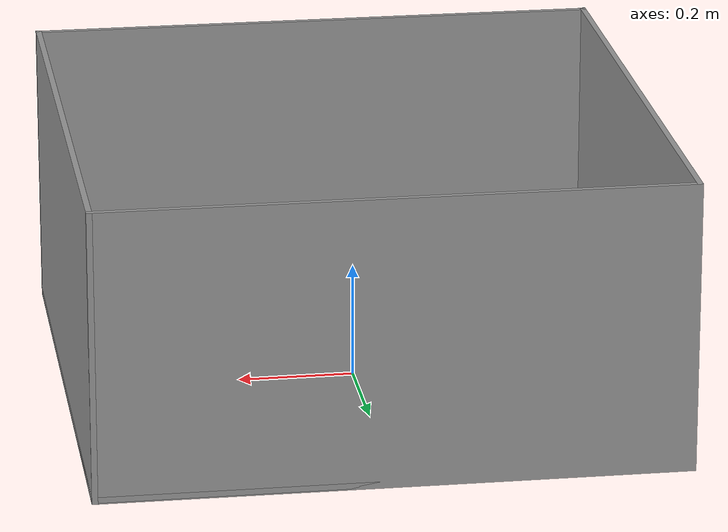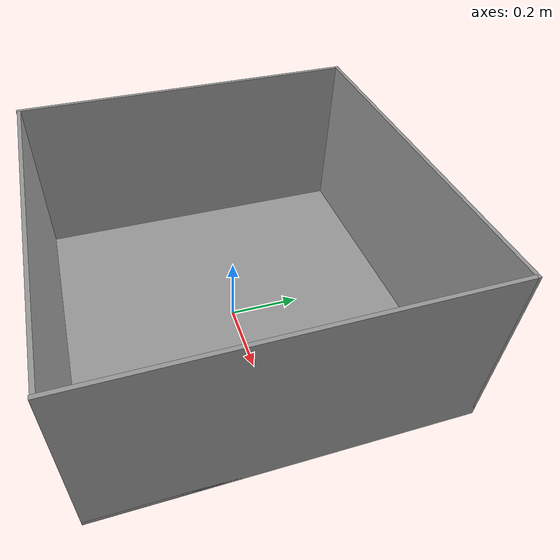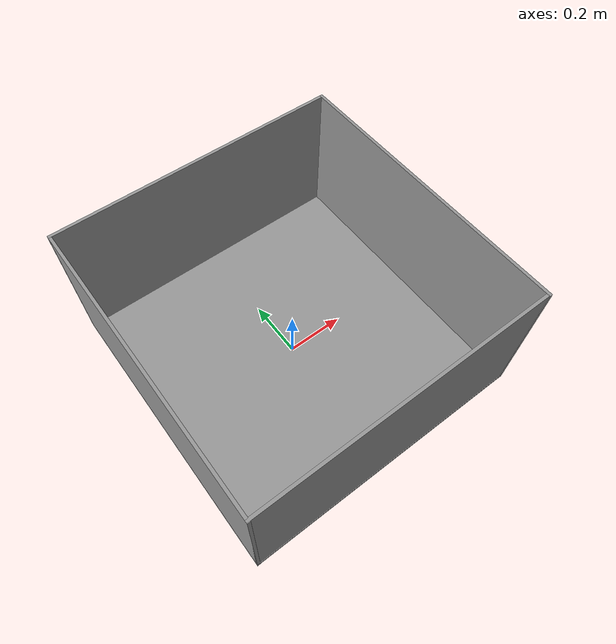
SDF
<?xml version='1.0'?>
<sdf version='1.6'>
  <model name='freezer_box'>
    <link name='link'>
      <pose frame=''>0 0 0 0 -0 0</pose>
      <inertial>
        <mass>1</mass>
        <inertia>
          <ixx>0.166667</ixx>
          <ixy>0</ixy>
          <ixz>0</ixz>
          <iyy>0.166667</iyy>
          <iyz>0</iyz>
          <izz>0.166667</izz>
        </inertia>
        <pose frame=''>0 0 0 0 -0 0</pose>
      </inertial>
      <self_collide>0</self_collide>
      <kinematic>0</kinematic>
      <gravity>1</gravity>
      <visual name='visual'>
        <geometry>
          <box>
            <size>1 1 0.01</size>
          </box>
        </geometry>
        <material>
          <script>
            <name>Gazebo/Grey</name>
            <uri>file://media/materials/scripts/gazebo.material</uri>
          </script>
          <ambient>0.3 0.3 0.3 1</ambient>
          <diffuse>0.7 0.7 0.7 1</diffuse>
          <specular>0.01 0.01 0.01 1</specular>
          <emissive>0 0 0 1</emissive>
          <shader type='vertex'>
            <normal_map>__default__</normal_map>
          </shader>
        </material>
        <pose frame=''>0 0 0 0 -0 0</pose>
        <transparency>0</transparency>
        <cast_shadows>1</cast_shadows>
      </visual>
      <collision name='collision'>
        <laser_retro>0</laser_retro>
        <max_contacts>10</max_contacts>
        <pose frame=''>0 0 0 0 -0 0</pose>
        <geometry>
          <box>
            <size>1 1 0.01</size>
          </box>
        </geometry>
        <surface>
          <friction>
            <ode>
              <mu>1</mu>
              <mu2>1</mu2>
              <fdir1>0 0 0</fdir1>
              <slip1>0</slip1>
              <slip2>0</slip2>
            </ode>
            <torsional>
              <coefficient>1</coefficient>
              <patch_radius>0</patch_radius>
              <surface_radius>0</surface_radius>
              <use_patch_radius>1</use_patch_radius>
              <ode>
                <slip>0</slip>
              </ode>
            </torsional>
          </friction>
          <bounce>
            <restitution_coefficient>0</restitution_coefficient>
            <threshold>1e+06</threshold>
          </bounce>
          <contact>
            <collide_without_contact>0</collide_without_contact>
            <collide_without_contact_bitmask>1</collide_without_contact_bitmask>
            <collide_bitmask>1</collide_bitmask>
            <ode>
              <soft_cfm>0</soft_cfm>
              <soft_erp>0.2</soft_erp>
              <kp>1e+13</kp>
              <kd>1</kd>
              <max_vel>0.01</max_vel>
              <min_depth>0</min_depth>
            </ode>
            <bullet>
              <split_impulse>1</split_impulse>
              <split_impulse_penetration_threshold>-0.01</split_impulse_penetration_threshold>
              <soft_cfm>0</soft_cfm>
              <soft_erp>0.2</soft_erp>
              <kp>1e+13</kp>
              <kd>1</kd>
            </bullet>
          </contact>
        </surface>
      </collision>
    </link>
    <link name='link_0'>
      <pose frame=''>0 -0.493 0.243 0 -0 1.5708</pose>
      <inertial>
        <mass>1</mass>
        <inertia>
          <ixx>0.166667</ixx>
          <ixy>0</ixy>
          <ixz>0</ixz>
          <iyy>0.166667</iyy>
          <iyz>0</iyz>
          <izz>0.166667</izz>
        </inertia>
        <pose frame=''>0 0 0 0 -0 0</pose>
      </inertial>
      <gravity>1</gravity>
      <self_collide>0</self_collide>
      <kinematic>0</kinematic>
      <visual name='visual'>
        <pose frame=''>0 0 0 0 -0 0</pose>
        <geometry>
          <box>
            <size>0.01 1 0.5</size>
          </box>
        </geometry>
        <material>
          <lighting>1</lighting>
          <script>
            <uri>file://media/materials/scripts/gazebo.material</uri>
            <name>Gazebo/Grey</name>
          </script>
          <ambient>0.3 0.3 0.3 1</ambient>
          <diffuse>0.7 0.7 0.7 1</diffuse>
          <specular>0.01 0.01 0.01 1</specular>
          <emissive>0 0 0 1</emissive>
          <shader type='vertex'>
            <normal_map>__default__</normal_map>
          </shader>
        </material>
        <transparency>0</transparency>
        <cast_shadows>1</cast_shadows>
      </visual>
      <collision name='collision'>
        <laser_retro>0</laser_retro>
        <max_contacts>10</max_contacts>
        <pose frame=''>0 0 0 0 -0 0</pose>
        <geometry>
          <box>
            <size>0.01 1 0.5</size>
          </box>
        </geometry>
        <surface>
          <friction>
            <ode>
              <mu>1</mu>
              <mu2>1</mu2>
              <fdir1>0 0 0</fdir1>
              <slip1>0</slip1>
              <slip2>0</slip2>
            </ode>
            <torsional>
              <coefficient>1</coefficient>
              <patch_radius>0</patch_radius>
              <surface_radius>0</surface_radius>
              <use_patch_radius>1</use_patch_radius>
              <ode>
                <slip>0</slip>
              </ode>
            </torsional>
          </friction>
          <bounce>
            <restitution_coefficient>0</restitution_coefficient>
            <threshold>1e+06</threshold>
          </bounce>
          <contact>
            <collide_without_contact>0</collide_without_contact>
            <collide_without_contact_bitmask>1</collide_without_contact_bitmask>
            <collide_bitmask>1</collide_bitmask>
            <ode>
              <soft_cfm>0</soft_cfm>
              <soft_erp>0.2</soft_erp>
              <kp>1e+13</kp>
              <kd>1</kd>
              <max_vel>0.01</max_vel>
              <min_depth>0</min_depth>
            </ode>
            <bullet>
              <split_impulse>1</split_impulse>
              <split_impulse_penetration_threshold>-0.01</split_impulse_penetration_threshold>
              <soft_cfm>0</soft_cfm>
              <soft_erp>0.2</soft_erp>
              <kp>1e+13</kp>
              <kd>1</kd>
            </bullet>
          </contact>
        </surface>
      </collision>
    </link>
    <link name='link_0_clone'>
      <pose frame=''>0.495 0 0.243 0 -0 0</pose>
      <inertial>
        <mass>1</mass>
        <inertia>
          <ixx>0.166667</ixx>
          <ixy>0</ixy>
          <ixz>0</ixz>
          <iyy>0.166667</iyy>
          <iyz>0</iyz>
          <izz>0.166667</izz>
        </inertia>
        <pose frame=''>0 0 0 0 -0 0</pose>
      </inertial>
      <self_collide>0</self_collide>
      <kinematic>0</kinematic>
      <visual name='visual'>
        <pose frame=''>0 0 0 0 -0 0</pose>
        <geometry>
          <box>
            <size>0.01 1 0.5</size>
          </box>
        </geometry>
        <material>
          <lighting>1</lighting>
          <script>
            <uri>file://media/materials/scripts/gazebo.material</uri>
            <name>Gazebo/Grey</name>
          </script>
          <ambient>0.3 0.3 0.3 1</ambient>
          <diffuse>0.7 0.7 0.7 1</diffuse>
          <specular>0.01 0.01 0.01 1</specular>
          <emissive>0 0 0 1</emissive>
          <shader type='vertex'>
            <normal_map>__default__</normal_map>
          </shader>
        </material>
        <transparency>0</transparency>
        <cast_shadows>1</cast_shadows>
      </visual>
      <collision name='collision'>
        <laser_retro>0</laser_retro>
        <max_contacts>10</max_contacts>
        <pose frame=''>0 0 0 0 -0 0</pose>
        <geometry>
          <box>
            <size>0.01 1 0.5</size>
          </box>
        </geometry>
        <surface>
          <friction>
            <ode>
              <mu>1</mu>
              <mu2>1</mu2>
              <fdir1>0 0 0</fdir1>
              <slip1>0</slip1>
              <slip2>0</slip2>
            </ode>
            <torsional>
              <coefficient>1</coefficient>
              <patch_radius>0</patch_radius>
              <surface_radius>0</surface_radius>
              <use_patch_radius>1</use_patch_radius>
              <ode>
                <slip>0</slip>
              </ode>
            </torsional>
          </friction>
          <bounce>
            <restitution_coefficient>0</restitution_coefficient>
            <threshold>1e+06</threshold>
          </bounce>
          <contact>
            <collide_without_contact>0</collide_without_contact>
            <collide_without_contact_bitmask>1</collide_without_contact_bitmask>
            <collide_bitmask>1</collide_bitmask>
            <ode>
              <soft_cfm>0</soft_cfm>
              <soft_erp>0.2</soft_erp>
              <kp>1e+13</kp>
              <kd>1</kd>
              <max_vel>0.01</max_vel>
              <min_depth>0</min_depth>
            </ode>
            <bullet>
              <split_impulse>1</split_impulse>
              <split_impulse_penetration_threshold>-0.01</split_impulse_penetration_threshold>
              <soft_cfm>0</soft_cfm>
              <soft_erp>0.2</soft_erp>
              <kp>1e+13</kp>
              <kd>1</kd>
            </bullet>
          </contact>
        </surface>
      </collision>
    </link>
    <link name='link_0_clone_0'>
      <pose frame=''>-0.495 0 0.243 0 -0 0</pose>
      <inertial>
        <mass>1</mass>
        <inertia>
          <ixx>0.166667</ixx>
          <ixy>0</ixy>
          <ixz>0</ixz>
          <iyy>0.166667</iyy>
          <iyz>0</iyz>
          <izz>0.166667</izz>
        </inertia>
        <pose frame=''>0 0 0 0 -0 0</pose>
      </inertial>
      <self_collide>0</self_collide>
      <kinematic>0</kinematic>
      <visual name='visual'>
        <pose frame=''>0 0 0 0 -0 0</pose>
        <geometry>
          <box>
            <size>0.01 1 0.5</size>
          </box>
        </geometry>
        <material>
          <lighting>1</lighting>
          <script>
            <uri>file://media/materials/scripts/gazebo.material</uri>
            <name>Gazebo/Grey</name>
          </script>
          <ambient>0.3 0.3 0.3 1</ambient>
          <diffuse>0.7 0.7 0.7 1</diffuse>
          <specular>0.01 0.01 0.01 1</specular>
          <emissive>0 0 0 1</emissive>
          <shader type='vertex'>
            <normal_map>__default__</normal_map>
          </shader>
        </material>
        <transparency>0</transparency>
        <cast_shadows>1</cast_shadows>
      </visual>
      <collision name='collision'>
        <laser_retro>0</laser_retro>
        <max_contacts>10</max_contacts>
        <pose frame=''>0 0 0 0 -0 0</pose>
        <geometry>
          <box>
            <size>0.01 1 0.5</size>
          </box>
        </geometry>
        <surface>
          <friction>
            <ode>
              <mu>1</mu>
              <mu2>1</mu2>
              <fdir1>0 0 0</fdir1>
              <slip1>0</slip1>
              <slip2>0</slip2>
            </ode>
            <torsional>
              <coefficient>1</coefficient>
              <patch_radius>0</patch_radius>
              <surface_radius>0</surface_radius>
              <use_patch_radius>1</use_patch_radius>
              <ode>
                <slip>0</slip>
              </ode>
            </torsional>
          </friction>
          <bounce>
            <restitution_coefficient>0</restitution_coefficient>
            <threshold>1e+06</threshold>
          </bounce>
          <contact>
            <collide_without_contact>0</collide_without_contact>
            <collide_without_contact_bitmask>1</collide_without_contact_bitmask>
            <collide_bitmask>1</collide_bitmask>
            <ode>
              <soft_cfm>0</soft_cfm>
              <soft_erp>0.2</soft_erp>
              <kp>1e+13</kp>
              <kd>1</kd>
              <max_vel>0.01</max_vel>
              <min_depth>0</min_depth>
            </ode>
            <bullet>
              <split_impulse>1</split_impulse>
              <split_impulse_penetration_threshold>-0.01</split_impulse_penetration_threshold>
              <soft_cfm>0</soft_cfm>
              <soft_erp>0.2</soft_erp>
              <kp>1e+13</kp>
              <kd>1</kd>
            </bullet>
          </contact>
        </surface>
      </collision>
    </link>
    <link name='link_0_clone_1'>
      <pose frame=''>-0 0.495 0.243 0 -0 -1.5708</pose>
      <inertial>
        <mass>1</mass>
        <inertia>
          <ixx>0.166667</ixx>
          <ixy>0</ixy>
          <ixz>0</ixz>
          <iyy>0.166667</iyy>
          <iyz>0</iyz>
          <izz>0.166667</izz>
        </inertia>
        <pose frame=''>0 0 0 0 -0 0</pose>
      </inertial>
      <self_collide>0</self_collide>
      <kinematic>0</kinematic>
      <visual name='visual'>
        <pose frame=''>0 0 0 0 -0 0</pose>
        <geometry>
          <box>
            <size>0.01 1 0.5</size>
          </box>
        </geometry>
        <material>
          <lighting>1</lighting>
          <script>
            <uri>file://media/materials/scripts/gazebo.material</uri>
            <name>Gazebo/Grey</name>
          </script>
          <ambient>0.3 0.3 0.3 1</ambient>
          <diffuse>0.7 0.7 0.7 1</diffuse>
          <specular>0.01 0.01 0.01 1</specular>
          <emissive>0 0 0 1</emissive>
          <shader type='vertex'>
            <normal_map>__default__</normal_map>
          </shader>
        </material>
        <transparency>0</transparency>
        <cast_shadows>1</cast_shadows>
      </visual>
      <collision name='collision'>
        <laser_retro>0</laser_retro>
        <max_contacts>10</max_contacts>
        <pose frame=''>0 0 0 0 -0 0</pose>
        <geometry>
          <box>
            <size>0.01 1 0.5</size>
          </box>
        </geometry>
        <surface>
          <friction>
            <ode>
              <mu>1</mu>
              <mu2>1</mu2>
              <fdir1>0 0 0</fdir1>
              <slip1>0</slip1>
              <slip2>0</slip2>
            </ode>
            <torsional>
              <coefficient>1</coefficient>
              <patch_radius>0</patch_radius>
              <surface_radius>0</surface_radius>
              <use_patch_radius>1</use_patch_radius>
              <ode>
                <slip>0</slip>
              </ode>
            </torsional>
          </friction>
          <bounce>
            <restitution_coefficient>0</restitution_coefficient>
            <threshold>1e+06</threshold>
          </bounce>
          <contact>
            <collide_without_contact>0</collide_without_contact>
            <collide_without_contact_bitmask>1</collide_without_contact_bitmask>
            <collide_bitmask>1</collide_bitmask>
            <ode>
              <soft_cfm>0</soft_cfm>
              <soft_erp>0.2</soft_erp>
              <kp>1e+13</kp>
              <kd>1</kd>
              <max_vel>0.01</max_vel>
              <min_depth>0</min_depth>
            </ode>
            <bullet>
              <split_impulse>1</split_impulse>
              <split_impulse_penetration_threshold>-0.01</split_impulse_penetration_threshold>
              <soft_cfm>0</soft_cfm>
              <soft_erp>0.2</soft_erp>
              <kp>1e+13</kp>
              <kd>1</kd>
            </bullet>
          </contact>
        </surface>
      </collision>
    </link>
    <joint name='link_JOINT_1' type='fixed'>
      <parent>link</parent>
      <child>link_0_clone_0</child>
      <pose frame=''>0 0 0 0 -0 0</pose>
      <physics>
        <ode>
          <limit>
            <cfm>0</cfm>
            <erp>0.2</erp>
          </limit>
          <suspension>
            <cfm>0</cfm>
            <erp>0.2</erp>
          </suspension>
        </ode>
      </physics>
    </joint>
    <joint name='link_JOINT_5' type='fixed'>
      <parent>link</parent>
      <child>link_0_clone</child>
      <pose frame=''>0 0 0 0 -0 0</pose>
      <physics>
        <ode>
          <limit>
            <cfm>0</cfm>
            <erp>0.2</erp>
          </limit>
          <suspension>
            <cfm>0</cfm>
            <erp>0.2</erp>
          </suspension>
        </ode>
      </physics>
    </joint>
    <joint name='link_JOINT_6' type='fixed'>
      <parent>link</parent>
      <child>link_0</child>
      <pose frame=''>0 0 0 0 -0 0</pose>
      <physics>
        <ode>
          <limit>
            <cfm>0</cfm>
            <erp>0.2</erp>
          </limit>
          <suspension>
            <cfm>0</cfm>
            <erp>0.2</erp>
          </suspension>
        </ode>
      </physics>
    </joint>
    <joint name='link_JOINT_7' type='fixed'>
      <parent>link</parent>
      <child>link_0_clone_1</child>
      <pose frame=''>0 0 0 0 -0 0</pose>
      <physics>
        <ode>
          <limit>
            <cfm>0</cfm>
            <erp>0.2</erp>
          </limit>
          <suspension>
            <cfm>0</cfm>
            <erp>0.2</erp>
          </suspension>
        </ode>
      </physics>
    </joint>
    <static>1</static>
    <allow_auto_disable>1</allow_auto_disable>
  </model>
</sdf>
